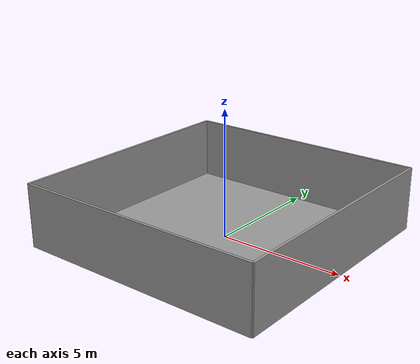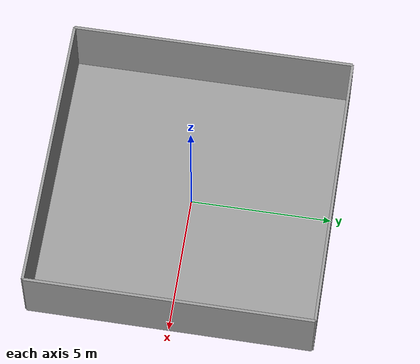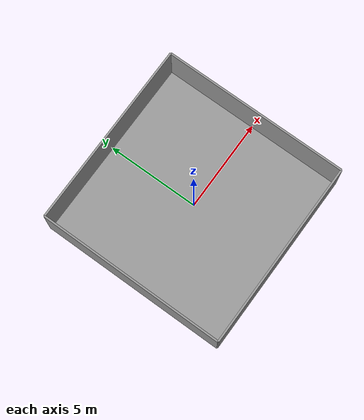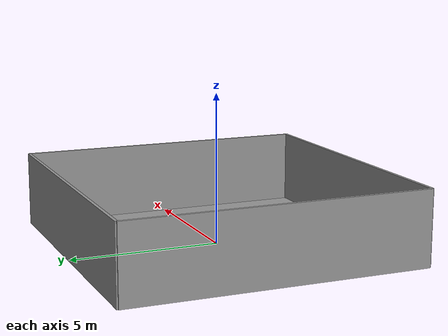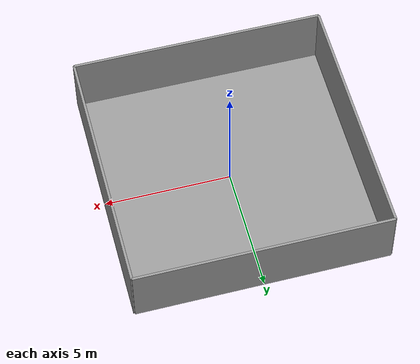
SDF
<?xml version="1.0" ?>
<sdf version="1.8">
  <world name="world">

  <gui fullscreen="false">
    <camera name="default_camera">
      <!-- Position above center of room -->
      <pose>0 0 -12 0 -1.5708 0</pose>

      <view_controller>orbit</view_controller>

      <projection_type>perspective</projection_type>
    </camera>
  </gui>

    <!-- Gravity and physics -->
    <gravity>0 0 -9.81</gravity>
    <physics type="ode">
      <max_step_size>0.001</max_step_size>
      <real_time_update_rate>1000</real_time_update_rate>
    </physics>

    <!-- Floor -->
    <model name="floor">
      <static>true</static>
      <link name="link">
        <collision name="collision">
          <geometry>
            <plane>
              <normal>0 0 1</normal>
              <size>10 10</size>
            </plane>
          </geometry>
        </collision>
        <visual name="visual">
          <geometry>
            <plane>
              <normal>0 0 1</normal>
              <size>10 10</size>
            </plane>
          </geometry>
          <material>
            <script>
              <uri>file://media/materials/scripts/gazebo.material</uri>
              <name>Gazebo/Grey</name>
            </script>
          </material>
        </visual>
      </link>
    </model>

    <!-- Walls -->
    <!-- Wall thickness 0.1 m, height 2.5 m -->
    <model name="wall_north">
      <static>true</static>
      <link name="link">
        <collision name="collision">
          <geometry>
            <box>
              <size>10 0.1 2.5</size>
            </box>
          </geometry>
          <pose>0 5 1.25 0 0 0</pose>
        </collision>
        <visual name="visual">
          <geometry>
            <box>
              <size>10 0.1 2.5</size>
            </box>
          </geometry>
          <pose>0 5 1.25 0 0 0</pose>
          <material>
            <script>
              <uri>file://media/materials/scripts/gazebo.material</uri>
              <name>Gazebo/Grey</name>
            </script>
          </material>
        </visual>
      </link>
    </model>

    <model name="wall_south">
      <static>true</static>
      <link name="link">
        <collision name="collision">
          <geometry>
            <box>
              <size>10 0.1 2.5</size>
            </box>
          </geometry>
          <pose>0 -5 1.25 0 0 0</pose>
        </collision>
        <visual name="visual">
          <geometry>
            <box>
              <size>10 0.1 2.5</size>
            </box>
          </geometry>
          <pose>0 -5 1.25 0 0 0</pose>
          <material>
            <script>
              <uri>file://media/materials/scripts/gazebo.material</uri>
              <name>Gazebo/Grey</name>
            </script>
          </material>
        </visual>
      </link>
    </model>

    <model name="wall_east">
      <static>true</static>
      <link name="link">
        <collision name="collision">
          <geometry>
            <box>
              <size>0.1 10 2.5</size>
            </box>
          </geometry>
          <pose>5 0 1.25 0 0 0</pose>
        </collision>
        <visual name="visual">
          <geometry>
            <box>
              <size>0.1 10 2.5</size>
            </box>
          </geometry>
          <pose>5 0 1.25 0 0 0</pose>
          <material>
            <script>
              <uri>file://media/materials/scripts/gazebo.material</uri>
              <name>Gazebo/Grey</name>
            </script>
          </material>
        </visual>
      </link>
    </model>

    <model name="wall_west">
      <static>true</static>
      <link name="link">
        <collision name="collision">
          <geometry>
            <box>
              <size>0.1 10 2.5</size>
            </box>
          </geometry>
          <pose>-5 0 1.25 0 0 0</pose>
        </collision>
        <visual name="visual">
          <geometry>
            <box>
              <size>0.1 10 2.5</size>
            </box>
          </geometry>
          <pose>-5 0 1.25 0 0 0</pose>
          <material>
            <script>
              <uri>file://media/materials/scripts/gazebo.material</uri>
              <name>Gazebo/Grey</name>
            </script>
          </material>
        </visual>
      </link>
    </model>

    <!-- Light -->
    <include>
      <uri>model://sun</uri>
    </include>

    <!-- Ground plane for reference -->
    <include>
      <uri>model://ground_plane</uri>
    </include>

  </world>
</sdf>
